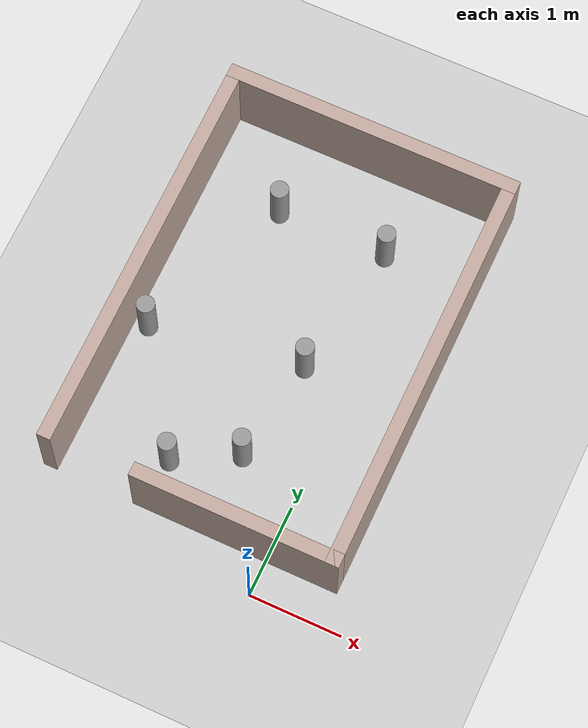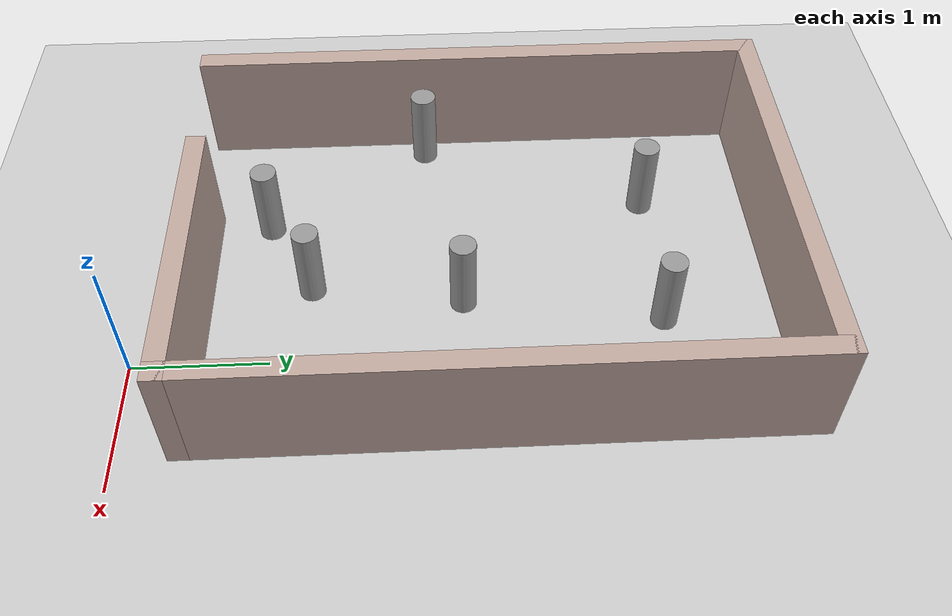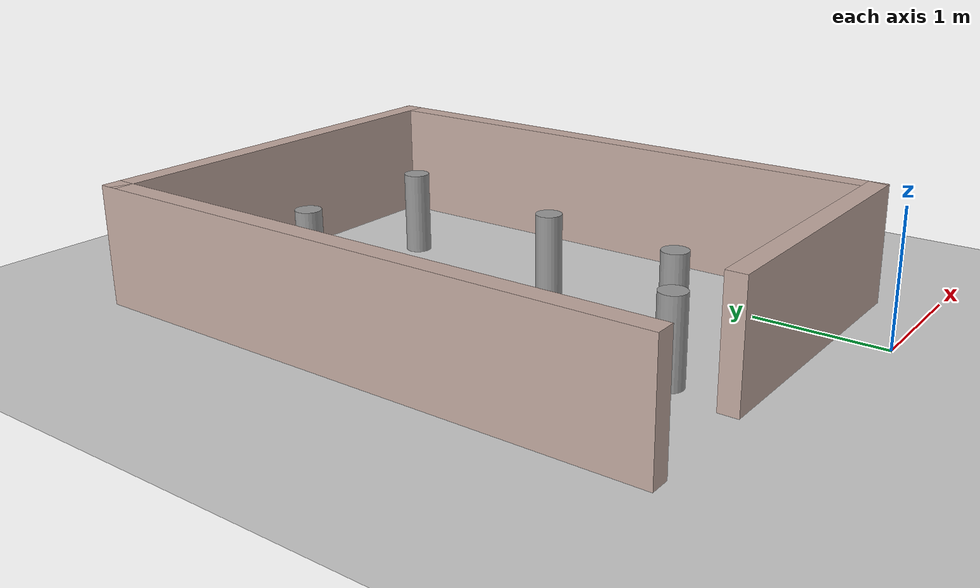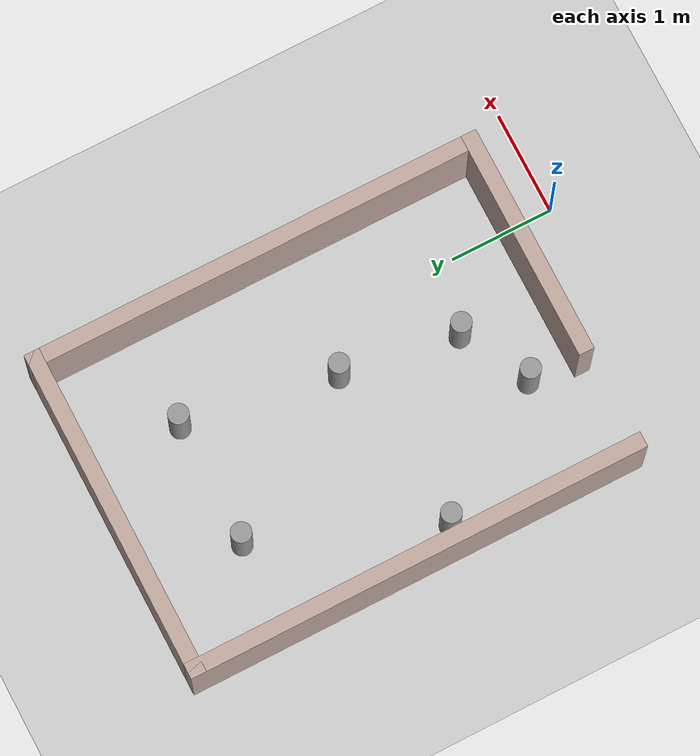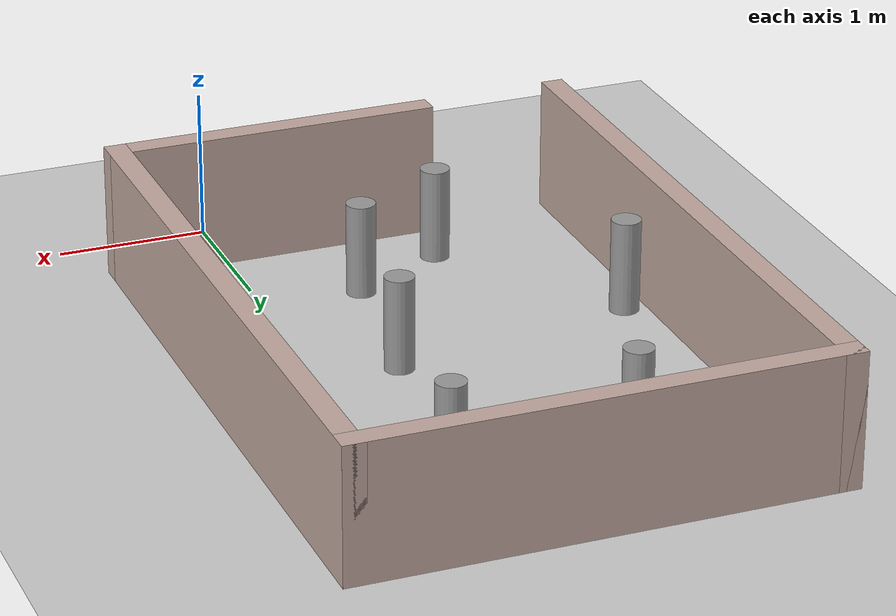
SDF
<sdf version="1.7">
 <world name="default">
  <light name="sun" type="directional">
   <pose>0 0 10 0 -0 0</pose>
   <diffuse>0.8 0.8 0.8 1</diffuse>
   <specular>0.2 0.2 0.2 1</specular>
   <attenuation>
    <range>1000</range>
    <constant>0.9</constant>
    <linear>0.01</linear>
    <quadratic>0.001</quadratic>
   </attenuation>
   <direction>-0.5 0.1 -0.9</direction>
   <spot><inner_angle>0</inner_angle><outer_angle>0</outer_angle><falloff>0</falloff></spot>
  </light>
  <model name="ground_plane">
   <static>1</static>
   <link name="link">
    <collision name="collision">
     <geometry><plane><normal>0 0 1</normal><size>100 100</size></plane></geometry>
     <surface><friction><ode><mu>100</mu><mu2>50</mu2></ode></friction></surface>
    </collision>
    <visual name="visual">
     <cast_shadows>0</cast_shadows>
     <geometry><plane><normal>0 0 1</normal><size>100 100</size></plane></geometry>
     <material>
      <script><uri>file://media/materials/scripts/gazebo.material</uri><name>Gazebo/Grey</name></script>
     </material>
    </visual>
   </link>
  </model>
  <gravity>0 0 -9.8</gravity>
  <magnetic_field>6e-06 2.3e-05 -4.2e-05</magnetic_field>
  <atmosphere type="adiabatic"/>
  <physics type="ode">
   <max_step_size>0.001</max_step_size>
   <real_time_factor>1</real_time_factor>
   <real_time_update_rate>1000</real_time_update_rate>
  </physics>
  <scene><ambient>0.4 0.4 0.4 1</ambient><background>0.7 0.7 0.7 1</background><shadows>1</shadows></scene>
  <audio><device>default</device></audio>
  <spherical_coordinates>
   <surface_model>EARTH_WGS84</surface_model>
   <latitude_deg>0</latitude_deg>
   <longitude_deg>0</longitude_deg>
   <elevation>0</elevation>
   <heading_deg>0</heading_deg>
  </spherical_coordinates>
  <model name="Untitled">
   <pose>-0.84474 2.62917 0 0 -0 0</pose>
   <link name="Wall_0">
    <collision name="Wall_0_Collision">
     <geometry><box><size>4.5 0.15 0.9</size></box></geometry>
     <pose>0 0 0.45 0 -0 0</pose>
    </collision>
    <visual name="Wall_0_Visual">
     <pose>0 0 0.45 0 -0 0</pose>
     <geometry><box><size>4.5 0.15 0.9</size></box></geometry>
     <material>
      <script><uri>file://media/materials/scripts/gazebo.material</uri><name>Gazebo/Grey</name></script>
      <ambient>0.760784 0.662745 0.627451 1</ambient>
     </material>
     <meta><layer>0</layer></meta>
    </visual>
    <pose>-1.55 -0 0 0 -0 1.5708</pose>
   </link>
   <link name="Wall_1">
    <collision name="Wall_1_Collision">
     <geometry><box><size>3.25 0.15 0.9</size></box></geometry>
     <pose>0 0 0.45 0 -0 0</pose>
    </collision>
    <visual name="Wall_1_Visual">
     <pose>0 0 0.45 0 -0 0</pose>
     <geometry><box><size>3.25 0.15 0.9</size></box></geometry>
     <material>
      <script><uri>file://media/materials/scripts/gazebo.material</uri><name>Gazebo/Grey</name></script>
      <ambient>0.760784 0.662745 0.627451 1</ambient>
     </material>
     <meta><layer>0</layer></meta>
    </visual>
    <pose>-0 2.175 0 0 -0 0</pose>
   </link>
   <link name="Wall_2">
    <collision name="Wall_2_Collision">
     <geometry><box><size>4.5 0.15 0.9</size></box></geometry>
     <pose>0 0 0.45 0 -0 0</pose>
    </collision>
    <visual name="Wall_2_Visual">
     <pose>0 0 0.45 0 -0 0</pose>
     <geometry><box><size>4.5 0.15 0.9</size></box></geometry>
     <material>
      <script><uri>file://media/materials/scripts/gazebo.material</uri><name>Gazebo/Grey</name></script>
      <ambient>0.760784 0.662745 0.627451 1</ambient>
     </material>
     <meta><layer>0</layer></meta>
    </visual>
    <pose>1.55 -0 0 0 -0 -1.5708</pose>
   </link>
   <link name="Wall_3">
    <collision name="Wall_3_Collision">
     <geometry><box><size>2.25 0.15 0.9</size></box></geometry>
     <pose>0 0 0.45 0 -0 0</pose>
    </collision>
    <visual name="Wall_3_Visual">
     <pose>0 0 0.45 0 -0 0</pose>
     <geometry><box><size>2.25 0.15 0.9</size></box></geometry>
     <material>
      <script><uri>file://media/materials/scripts/gazebo.material</uri><name>Gazebo/Grey</name></script>
      <ambient>0.760784 0.662745 0.627451 1</ambient>
     </material>
     <meta><layer>0</layer></meta>
    </visual>
    <pose>0.5 -2.175 0 0 -0 3.14159</pose>
   </link>
   <static>1</static>
  </model>
  <model name="unit_cylinder">
   <pose>-1.46666 3.88261 0.329302 -1.6e-05 -8e-06 -0.000103</pose>
   <link name="link">
    <inertial>
     <mass>1</mass>
     <inertia><ixx>0.145833</ixx><ixy>0</ixy><ixz>0</ixz><iyy>0.145833</iyy><iyz>0</iyz><izz>0.125</izz></inertia>
    </inertial>
    <collision name="collision">
     <geometry><cylinder><radius>0.0985697</radius><length>0.638618</length></cylinder></geometry>
    </collision>
    <visual name="visual">
     <geometry><cylinder><radius>0.0985697</radius><length>0.638618</length></cylinder></geometry>
     <material>
      <script><name>Gazebo/Grey</name><uri>file://media/materials/scripts/gazebo.material</uri></script>
     </material>
    </visual>
   </link>
  </model>
  <model name="unit_cylinder_clone">
   <pose>-0.2625 3.88914 0.329309 0 0 -1.6e-05</pose>
   <link name="link">
    <inertial>
     <mass>1</mass>
     <inertia><ixx>0.145833</ixx><ixy>0</ixy><ixz>0</ixz><iyy>0.145833</iyy><iyz>0</iyz><izz>0.125</izz></inertia>
    </inertial>
    <collision name="collision">
     <geometry><cylinder><radius>0.0985695</radius><length>0.638618</length></cylinder></geometry>
    </collision>
    <visual name="visual">
     <geometry><cylinder><radius>0.0985695</radius><length>0.638618</length></cylinder></geometry>
     <material>
      <script><name>Gazebo/Grey</name><uri>file://media/materials/scripts/gazebo.material</uri></script>
     </material>
    </visual>
   </link>
  </model>
  <model name="unit_cylinder_clone_0">
   <pose>-0.504291 2.41345 0.319309 0 0 -2.4e-05</pose>
   <link name="link">
    <inertial>
     <mass>1</mass>
     <inertia><ixx>0.145833</ixx><ixy>0</ixy><ixz>0</ixz><iyy>0.145833</iyy><iyz>0</iyz><izz>0.125</izz></inertia>
    </inertial>
    <collision name="collision">
     <geometry><cylinder><radius>0.0985695</radius><length>0.638618</length></cylinder></geometry>
    </collision>
    <visual name="visual">
     <geometry><cylinder><radius>0.0985695</radius><length>0.638618</length></cylinder></geometry>
     <material>
      <script><name>Gazebo/Grey</name><uri>file://media/materials/scripts/gazebo.material</uri></script>
     </material>
    </visual>
   </link>
  </model>
  <model name="unit_cylinder_clone_1">
   <pose>-0.672688 1.2773 0.319309 0 0 -3.6e-05</pose>
   <link name="link">
    <inertial>
     <mass>1</mass>
     <inertia><ixx>0.145833</ixx><ixy>0</ixy><ixz>0</ixz><iyy>0.145833</iyy><iyz>0</iyz><izz>0.125</izz></inertia>
    </inertial>
    <collision name="collision">
     <geometry><cylinder><radius>0.0985695</radius><length>0.638618</length></cylinder></geometry>
    </collision>
    <visual name="visual">
     <geometry><cylinder><radius>0.0985695</radius><length>0.638618</length></cylinder></geometry>
     <material>
      <script><name>Gazebo/Grey</name><uri>file://media/materials/scripts/gazebo.material</uri></script>
     </material>
    </visual>
   </link>
  </model>
  <model name="unit_cylinder_clone_2">
   <pose>-2.16027 2.15672 0.329309 1e-06 -1e-06 -9.4e-05</pose>
   <link name="link">
    <inertial>
     <mass>1</mass>
     <inertia><ixx>0.145833</ixx><ixy>0</ixy><ixz>0</ixz><iyy>0.145833</iyy><iyz>0</iyz><izz>0.125</izz></inertia>
    </inertial>
    <collision name="collision">
     <geometry><cylinder><radius>0.0985695</radius><length>0.638618</length></cylinder></geometry>
    </collision>
    <visual name="visual">
     <geometry><cylinder><radius>0.0985695</radius><length>0.638618</length></cylinder></geometry>
     <material>
      <script><name>Gazebo/Grey</name><uri>file://media/materials/scripts/gazebo.material</uri></script>
     </material>
    </visual>
   </link>
  </model>
  <model name="unit_cylinder_clone_3">
   <pose>-1.32694 0.926743 0.319299 -0 -0 -8.1e-05</pose>
   <link name="link">
    <inertial>
     <mass>1</mass>
     <inertia><ixx>0.145833</ixx><ixy>0</ixy><ixz>0</ixz><iyy>0.145833</iyy><iyz>0</iyz><izz>0.125</izz></inertia>
    </inertial>
    <collision name="collision">
     <geometry><cylinder><radius>0.0985695</radius><length>0.638618</length></cylinder></geometry>
    </collision>
    <visual name="visual">
     <geometry><cylinder><radius>0.0985695</radius><length>0.638618</length></cylinder></geometry>
     <material>
      <script><name>Gazebo/Grey</name><uri>file://media/materials/scripts/gazebo.material</uri></script>
     </material>
    </visual>
   </link>
  </model>
 </world>
</sdf>
